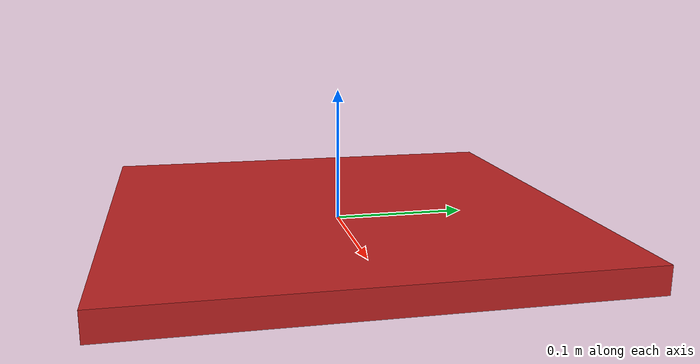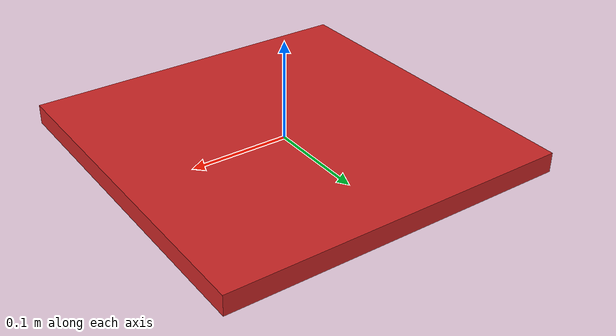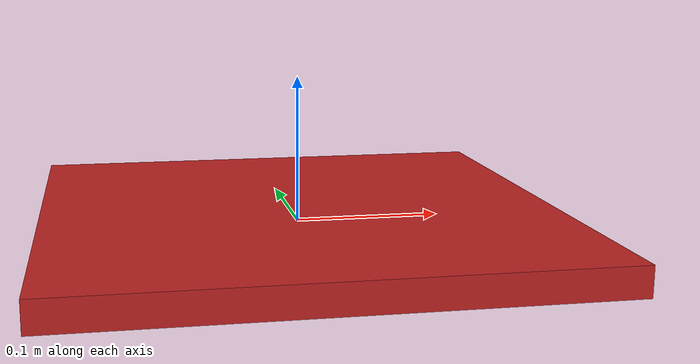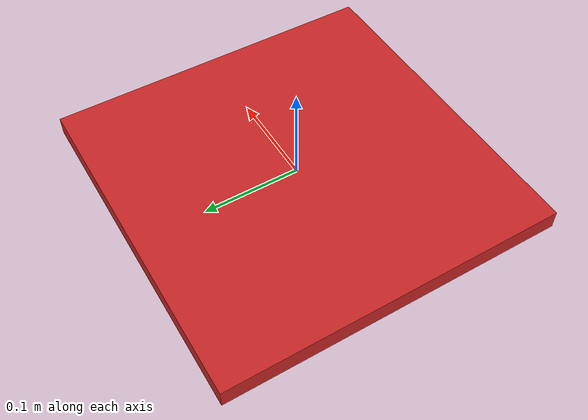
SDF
<?xml version='1.0'?>
<sdf version='1.6'>
  <model name="target_red_cross">
    <static>1</static>
    <link name='link'>
      <collision name='collision'>
        <geometry><box><size>0.35 0.35 0.02</size></box></geometry>
        <surface>
          <contact><ode/></contact>
          <bounce/>
          <friction><torsional><ode/></torsional><ode/></friction>
        </surface>
        <max_contacts>10</max_contacts>
      </collision>
      <visual name='visual'>
        <geometry><box><size>0.35 0.35 0.02</size></box></geometry>
        <material>
          <script>
            <uri>model://target_red_cross/materials/scripts</uri>
            <uri>model://target_red_cross/materials/textures</uri>
            <name>Mark/target_red_cross</name>
          </script>
        </material>
      </visual>
      <self_collide>0</self_collide>
      <enable_wind>0</enable_wind>
      <kinematic>0</kinematic>
    </link>
  </model>
</sdf>
